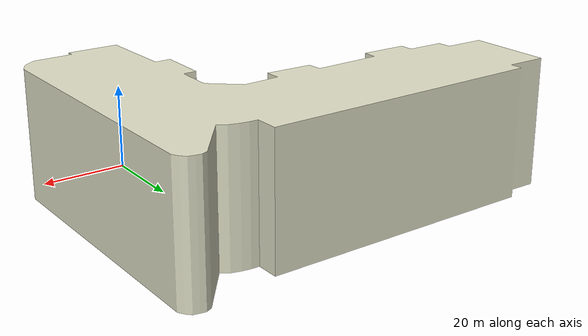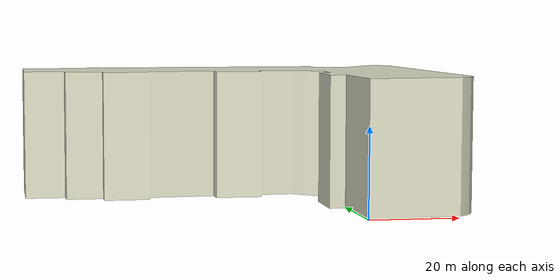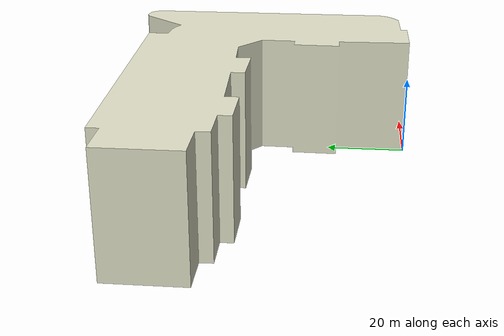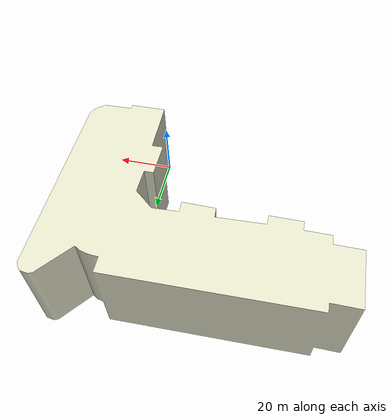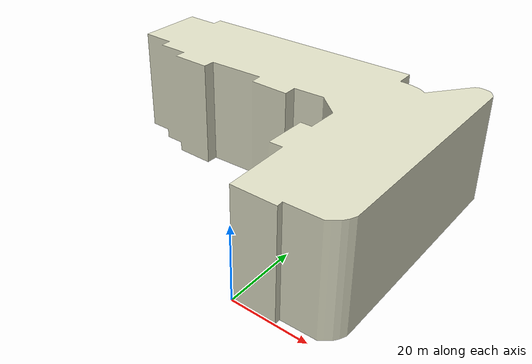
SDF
<?xml version='1.0'?>
<sdf version="1.5">
<model name="iahs">
  <pose>0 0 0.1 0 0 0</pose>
  <static>true</static>
    <link name="link">
      <collision name="collision">
        <geometry>
          <box>
            <size>0.29824 0.43206 0.20367</size>
          </box>
        </geometry>
      </collision>

      <visual name="visual">
        <geometry>
          <mesh>
            <uri>model://iahs/meshes/iahs.dae</uri>
          </mesh>
        </geometry>
      </visual>
    </link>
  </model>
</sdf>
